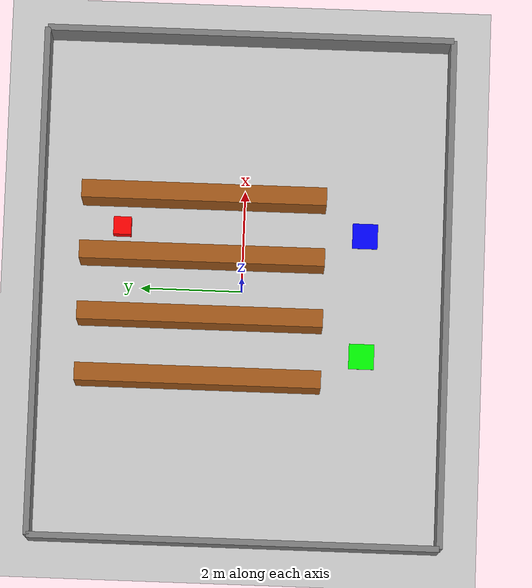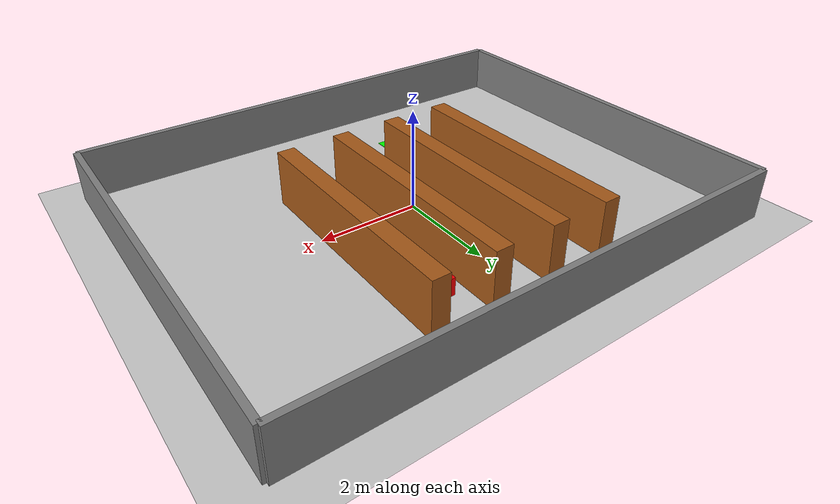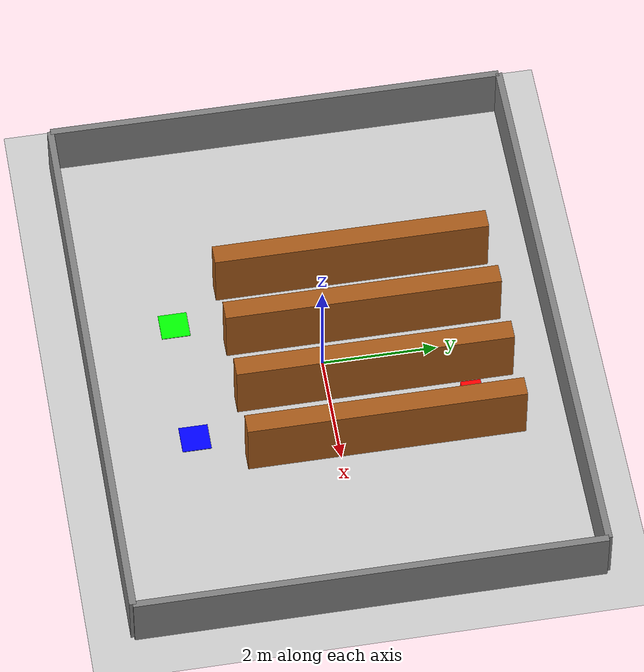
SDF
<?xml version="1.0" ?>
<sdf version="1.6">
  <world name="shelf_120deg_world">
    <physics name="default_physics" default="0" type="ode">
      <max_step_size>0.001</max_step_size>
      <real_time_factor>1.0</real_time_factor>
      <real_time_update_rate>1000</real_time_update_rate>
    </physics>

    <plugin name="gazebo_ros_init" filename="libgazebo_ros_init.so"/>
    <plugin name="gazebo_ros_factory" filename="libgazebo_ros_factory.so"/>

    <include>
      <uri>model://sun</uri>
    </include>

    <include>
      <uri>model://ground_plane</uri>
    </include>

    <!-- Outer walls -->
    <model name="wall_north">
      <static>true</static>
      <pose>0 4.0 0.5 0 0 0</pose>
      <link name="link">
        <collision name="collision"><geometry><box><size>10 0.12 1.0</size></box></geometry></collision>
        <visual name="visual"><geometry><box><size>10 0.12 1.0</size></box></geometry><material><ambient>0.5 0.5 0.5 1</ambient></material></visual>
      </link>
    </model>
    <model name="wall_south">
      <static>true</static>
      <pose>0 -4.0 0.5 0 0 0</pose>
      <link name="link">
        <collision name="collision"><geometry><box><size>10 0.12 1.0</size></box></geometry></collision>
        <visual name="visual"><geometry><box><size>10 0.12 1.0</size></box></geometry><material><ambient>0.5 0.5 0.5 1</ambient></material></visual>
      </link>
    </model>
    <model name="wall_east">
      <static>true</static>
      <pose>5.0 0 0.5 0 0 0</pose>
      <link name="link">
        <collision name="collision"><geometry><box><size>0.12 8 1.0</size></box></geometry></collision>
        <visual name="visual"><geometry><box><size>0.12 8 1.0</size></box></geometry><material><ambient>0.5 0.5 0.5 1</ambient></material></visual>
      </link>
    </model>
    <model name="wall_west">
      <static>true</static>
      <pose>-5.0 0 0.5 0 0 0</pose>
      <link name="link">
        <collision name="collision"><geometry><box><size>0.12 8 1.0</size></box></geometry></collision>
        <visual name="visual"><geometry><box><size>0.12 8 1.0</size></box></geometry><material><ambient>0.5 0.5 0.5 1</ambient></material></visual>
      </link>
    </model>

    <!-- Shelves forming three aisles -->
    <model name="shelf_a_left">
      <static>true</static>
      <pose>-1.8 0.8 0.55 0 0 0</pose>
      <link name="link">
        <collision name="collision"><geometry><box><size>0.35 4.8 1.1</size></box></geometry></collision>
        <visual name="visual"><geometry><box><size>0.35 4.8 1.1</size></box></geometry><material><ambient>0.65 0.35 0.1 1</ambient></material></visual>
      </link>
    </model>
    <model name="shelf_a_right">
      <static>true</static>
      <pose>-0.6 0.8 0.55 0 0 0</pose>
      <link name="link">
        <collision name="collision"><geometry><box><size>0.35 4.8 1.1</size></box></geometry></collision>
        <visual name="visual"><geometry><box><size>0.35 4.8 1.1</size></box></geometry><material><ambient>0.65 0.35 0.1 1</ambient></material></visual>
      </link>
    </model>
    <model name="shelf_b_left">
      <static>true</static>
      <pose>0.6 0.8 0.55 0 0 0</pose>
      <link name="link">
        <collision name="collision"><geometry><box><size>0.35 4.8 1.1</size></box></geometry></collision>
        <visual name="visual"><geometry><box><size>0.35 4.8 1.1</size></box></geometry><material><ambient>0.65 0.35 0.1 1</ambient></material></visual>
      </link>
    </model>
    <model name="shelf_b_right">
      <static>true</static>
      <pose>1.8 0.8 0.55 0 0 0</pose>
      <link name="link">
        <collision name="collision"><geometry><box><size>0.35 4.8 1.1</size></box></geometry></collision>
        <visual name="visual"><geometry><box><size>0.35 4.8 1.1</size></box></geometry><material><ambient>0.65 0.35 0.1 1</ambient></material></visual>
      </link>
    </model>

    <!-- Floor tag markers at aisle entrances: non-vision helper; sim_tag_zone_publisher uses these coordinates -->
    <model name="tag_zone_1_floor">
      <static>true</static>
      <pose>-1.2 -2.4 0.006 0 0 0</pose>
      <link name="link">
        <visual name="visual"><geometry><box><size>0.5 0.5 0.01</size></box></geometry><material><ambient>0 1 0 1</ambient><diffuse>0 1 0 1</diffuse></material></visual>
      </link>
    </model>
    <model name="tag_zone_2_floor">
      <static>true</static>
      <pose>1.2 -2.4 0.006 0 0 0</pose>
      <link name="link">
        <visual name="visual"><geometry><box><size>0.5 0.5 0.01</size></box></geometry><material><ambient>0 0 1 1</ambient><diffuse>0 0 1 1</diffuse></material></visual>
      </link>
    </model>
    <model name="target_box">
      <static>true</static>
      <pose>1.2 2.4 0.18 0 0 0</pose>
      <link name="link">
        <collision name="collision"><geometry><box><size>0.35 0.35 0.35</size></box></geometry></collision>
        <visual name="visual"><geometry><box><size>0.35 0.35 0.35</size></box></geometry><material><ambient>1 0 0 1</ambient><diffuse>1 0 0 1</diffuse></material></visual>
      </link>
    </model>
  </world>
</sdf>
